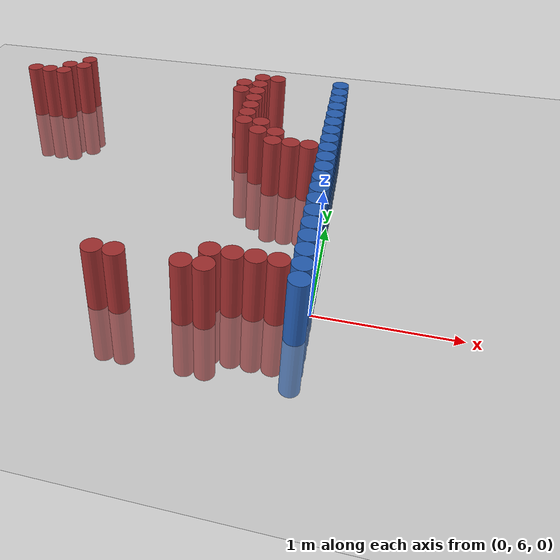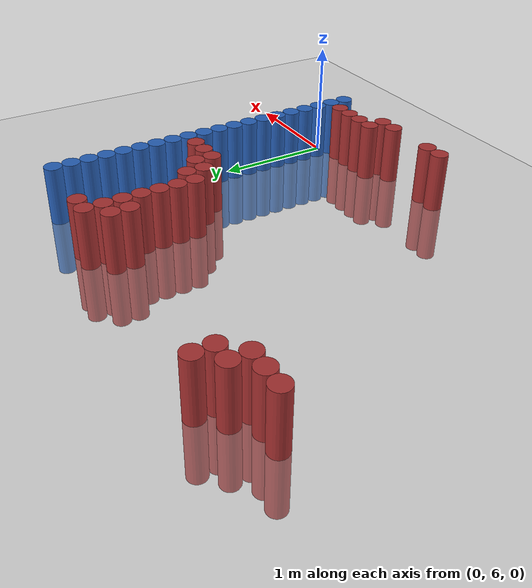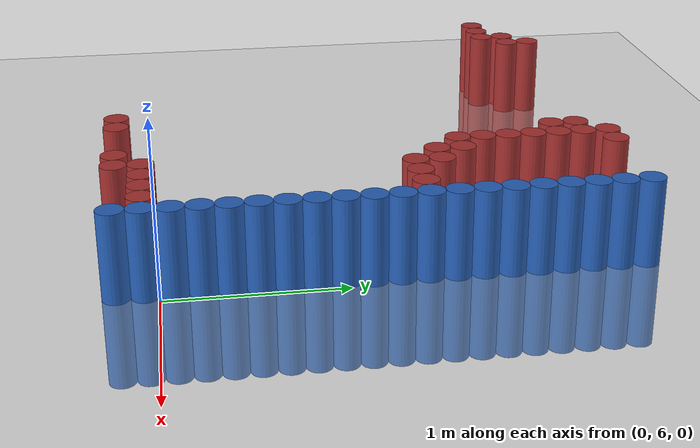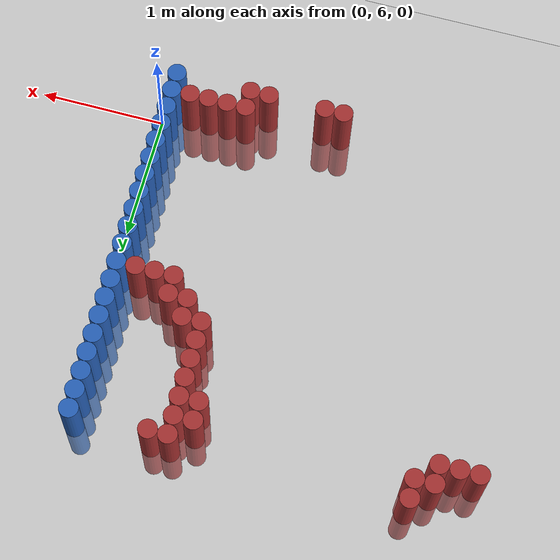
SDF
<sdf version="1.6">
 <world name="default">
  <model name="ground_plane">
   <static>1</static>
   <link name="link">
    <collision name="collision">
     <geometry><plane><normal>0 0 1</normal><size>100 100</size></plane></geometry>
     <surface><friction><ode><mu>100</mu><mu2>50</mu2></ode></friction></surface>
    </collision>
    <visual name="visual">
     <cast_shadows>0</cast_shadows>
     <geometry><plane><normal>0 0 1</normal><size>100 100</size></plane></geometry>
     <material>
      <script><uri>file://media/materials/scripts/gazebo.material</uri><name>Gazebo/Grey</name></script>
     </material>
    </visual>
   </link>
  </model>
  <model name="unit_cylinder_180">
   <static>1</static>
   <pose>-3.075000 8.325000 0.000000 0.000000 0.000000 0.000000</pose>
   <link name="link">
    <inertial>
     <mass>1</mass>
     <inertia><ixx>0.145833</ixx><ixy>0</ixy><ixz>0</ixz><iyy>0.145833</iyy><iyz>0</iyz><izz>0.125</izz></inertia>
    </inertial>
    <collision name="collision">
     <geometry><cylinder><radius>0.075000</radius><length>1</length></cylinder></geometry>
    </collision>
    <visual name="visual">
     <geometry><cylinder><radius>0.075000</radius><length>1</length></cylinder></geometry>
     <material>
      <ambient>0.648000 0.192000 0.192000 1</ambient>
      <diffuse>0.648000 0.192000 0.192000 1</diffuse>
     </material>
     <material>
      <script><name>Gazebo/Grey</name><uri>file://media/materials/scripts/gazebo.material</uri></script>
     </material>
    </visual>
   </link>
  </model>
  <model name="unit_cylinder_184">
   <static>1</static>
   <pose>-2.925000 8.325000 0.000000 0.000000 0.000000 0.000000</pose>
   <link name="link">
    <inertial>
     <mass>1</mass>
     <inertia><ixx>0.145833</ixx><ixy>0</ixy><ixz>0</ixz><iyy>0.145833</iyy><iyz>0</iyz><izz>0.125</izz></inertia>
    </inertial>
    <collision name="collision">
     <geometry><cylinder><radius>0.075000</radius><length>1</length></cylinder></geometry>
    </collision>
    <visual name="visual">
     <geometry><cylinder><radius>0.075000</radius><length>1</length></cylinder></geometry>
     <material>
      <ambient>0.648000 0.192000 0.192000 1</ambient>
      <diffuse>0.648000 0.192000 0.192000 1</diffuse>
     </material>
     <material>
      <script><name>Gazebo/Grey</name><uri>file://media/materials/scripts/gazebo.material</uri></script>
     </material>
    </visual>
   </link>
  </model>
  <model name="unit_cylinder_189">
   <static>1</static>
   <pose>-2.775000 8.325000 0.000000 0.000000 0.000000 0.000000</pose>
   <link name="link">
    <inertial>
     <mass>1</mass>
     <inertia><ixx>0.145833</ixx><ixy>0</ixy><ixz>0</ixz><iyy>0.145833</iyy><iyz>0</iyz><izz>0.125</izz></inertia>
    </inertial>
    <collision name="collision">
     <geometry><cylinder><radius>0.075000</radius><length>1</length></cylinder></geometry>
    </collision>
    <visual name="visual">
     <geometry><cylinder><radius>0.075000</radius><length>1</length></cylinder></geometry>
     <material>
      <ambient>0.648000 0.192000 0.192000 1</ambient>
      <diffuse>0.648000 0.192000 0.192000 1</diffuse>
     </material>
     <material>
      <script><name>Gazebo/Grey</name><uri>file://media/materials/scripts/gazebo.material</uri></script>
     </material>
    </visual>
   </link>
  </model>
  <model name="unit_cylinder_190">
   <static>1</static>
   <pose>-2.775000 8.475000 0.000000 0.000000 0.000000 0.000000</pose>
   <link name="link">
    <inertial>
     <mass>1</mass>
     <inertia><ixx>0.145833</ixx><ixy>0</ixy><ixz>0</ixz><iyy>0.145833</iyy><iyz>0</iyz><izz>0.125</izz></inertia>
    </inertial>
    <collision name="collision">
     <geometry><cylinder><radius>0.075000</radius><length>1</length></cylinder></geometry>
    </collision>
    <visual name="visual">
     <geometry><cylinder><radius>0.075000</radius><length>1</length></cylinder></geometry>
     <material>
      <ambient>0.648000 0.192000 0.192000 1</ambient>
      <diffuse>0.648000 0.192000 0.192000 1</diffuse>
     </material>
     <material>
      <script><name>Gazebo/Grey</name><uri>file://media/materials/scripts/gazebo.material</uri></script>
     </material>
    </visual>
   </link>
  </model>
  <model name="unit_cylinder_194">
   <static>1</static>
   <pose>-2.625000 8.475000 0.000000 0.000000 0.000000 0.000000</pose>
   <link name="link">
    <inertial>
     <mass>1</mass>
     <inertia><ixx>0.145833</ixx><ixy>0</ixy><ixz>0</ixz><iyy>0.145833</iyy><iyz>0</iyz><izz>0.125</izz></inertia>
    </inertial>
    <collision name="collision">
     <geometry><cylinder><radius>0.075000</radius><length>1</length></cylinder></geometry>
    </collision>
    <visual name="visual">
     <geometry><cylinder><radius>0.075000</radius><length>1</length></cylinder></geometry>
     <material>
      <ambient>0.648000 0.192000 0.192000 1</ambient>
      <diffuse>0.648000 0.192000 0.192000 1</diffuse>
     </material>
     <material>
      <script><name>Gazebo/Grey</name><uri>file://media/materials/scripts/gazebo.material</uri></script>
     </material>
    </visual>
   </link>
  </model>
  <model name="unit_cylinder_195">
   <static>1</static>
   <pose>-2.625000 8.625000 0.000000 0.000000 0.000000 0.000000</pose>
   <link name="link">
    <inertial>
     <mass>1</mass>
     <inertia><ixx>0.145833</ixx><ixy>0</ixy><ixz>0</ixz><iyy>0.145833</iyy><iyz>0</iyz><izz>0.125</izz></inertia>
    </inertial>
    <collision name="collision">
     <geometry><cylinder><radius>0.075000</radius><length>1</length></cylinder></geometry>
    </collision>
    <visual name="visual">
     <geometry><cylinder><radius>0.075000</radius><length>1</length></cylinder></geometry>
     <material>
      <ambient>0.648000 0.192000 0.192000 1</ambient>
      <diffuse>0.648000 0.192000 0.192000 1</diffuse>
     </material>
     <material>
      <script><name>Gazebo/Grey</name><uri>file://media/materials/scripts/gazebo.material</uri></script>
     </material>
    </visual>
   </link>
  </model>
  <model name="unit_cylinder_206">
   <static>1</static>
   <pose>-1.425000 5.775000 0.000000 0.000000 0.000000 0.000000</pose>
   <link name="link">
    <inertial>
     <mass>1</mass>
     <inertia><ixx>0.145833</ixx><ixy>0</ixy><ixz>0</ixz><iyy>0.145833</iyy><iyz>0</iyz><izz>0.125</izz></inertia>
    </inertial>
    <collision name="collision">
     <geometry><cylinder><radius>0.075000</radius><length>1</length></cylinder></geometry>
    </collision>
    <visual name="visual">
     <geometry><cylinder><radius>0.075000</radius><length>1</length></cylinder></geometry>
     <material>
      <ambient>0.648000 0.192000 0.192000 1</ambient>
      <diffuse>0.648000 0.192000 0.192000 1</diffuse>
     </material>
     <material>
      <script><name>Gazebo/Grey</name><uri>file://media/materials/scripts/gazebo.material</uri></script>
     </material>
    </visual>
   </link>
  </model>
  <model name="unit_cylinder_213">
   <static>1</static>
   <pose>-1.275000 5.775000 0.000000 0.000000 0.000000 0.000000</pose>
   <link name="link">
    <inertial>
     <mass>1</mass>
     <inertia><ixx>0.145833</ixx><ixy>0</ixy><ixz>0</ixz><iyy>0.145833</iyy><iyz>0</iyz><izz>0.125</izz></inertia>
    </inertial>
    <collision name="collision">
     <geometry><cylinder><radius>0.075000</radius><length>1</length></cylinder></geometry>
    </collision>
    <visual name="visual">
     <geometry><cylinder><radius>0.075000</radius><length>1</length></cylinder></geometry>
     <material>
      <ambient>0.648000 0.192000 0.192000 1</ambient>
      <diffuse>0.648000 0.192000 0.192000 1</diffuse>
     </material>
     <material>
      <script><name>Gazebo/Grey</name><uri>file://media/materials/scripts/gazebo.material</uri></script>
     </material>
    </visual>
   </link>
  </model>
  <model name="unit_cylinder_223">
   <static>1</static>
   <pose>-0.975000 8.325000 0.000000 0.000000 0.000000 0.000000</pose>
   <link name="link">
    <inertial>
     <mass>1</mass>
     <inertia><ixx>0.145833</ixx><ixy>0</ixy><ixz>0</ixz><iyy>0.145833</iyy><iyz>0</iyz><izz>0.125</izz></inertia>
    </inertial>
    <collision name="collision">
     <geometry><cylinder><radius>0.075000</radius><length>1</length></cylinder></geometry>
    </collision>
    <visual name="visual">
     <geometry><cylinder><radius>0.075000</radius><length>1</length></cylinder></geometry>
     <material>
      <ambient>0.648000 0.192000 0.192000 1</ambient>
      <diffuse>0.648000 0.192000 0.192000 1</diffuse>
     </material>
     <material>
      <script><name>Gazebo/Grey</name><uri>file://media/materials/scripts/gazebo.material</uri></script>
     </material>
    </visual>
   </link>
  </model>
  <model name="unit_cylinder_224">
   <static>1</static>
   <pose>-0.975000 8.475000 0.000000 0.000000 0.000000 0.000000</pose>
   <link name="link">
    <inertial>
     <mass>1</mass>
     <inertia><ixx>0.145833</ixx><ixy>0</ixy><ixz>0</ixz><iyy>0.145833</iyy><iyz>0</iyz><izz>0.125</izz></inertia>
    </inertial>
    <collision name="collision">
     <geometry><cylinder><radius>0.075000</radius><length>1</length></cylinder></geometry>
    </collision>
    <visual name="visual">
     <geometry><cylinder><radius>0.075000</radius><length>1</length></cylinder></geometry>
     <material>
      <ambient>0.648000 0.192000 0.192000 1</ambient>
      <diffuse>0.648000 0.192000 0.192000 1</diffuse>
     </material>
     <material>
      <script><name>Gazebo/Grey</name><uri>file://media/materials/scripts/gazebo.material</uri></script>
     </material>
    </visual>
   </link>
  </model>
  <model name="unit_cylinder_230">
   <static>1</static>
   <pose>-0.825000 5.775000 0.000000 0.000000 0.000000 0.000000</pose>
   <link name="link">
    <inertial>
     <mass>1</mass>
     <inertia><ixx>0.145833</ixx><ixy>0</ixy><ixz>0</ixz><iyy>0.145833</iyy><iyz>0</iyz><izz>0.125</izz></inertia>
    </inertial>
    <collision name="collision">
     <geometry><cylinder><radius>0.075000</radius><length>1</length></cylinder></geometry>
    </collision>
    <visual name="visual">
     <geometry><cylinder><radius>0.075000</radius><length>1</length></cylinder></geometry>
     <material>
      <ambient>0.648000 0.192000 0.192000 1</ambient>
      <diffuse>0.648000 0.192000 0.192000 1</diffuse>
     </material>
     <material>
      <script><name>Gazebo/Grey</name><uri>file://media/materials/scripts/gazebo.material</uri></script>
     </material>
    </visual>
   </link>
  </model>
  <model name="unit_cylinder_231">
   <static>1</static>
   <pose>-0.825000 7.725000 0.000000 0.000000 0.000000 0.000000</pose>
   <link name="link">
    <inertial>
     <mass>1</mass>
     <inertia><ixx>0.145833</ixx><ixy>0</ixy><ixz>0</ixz><iyy>0.145833</iyy><iyz>0</iyz><izz>0.125</izz></inertia>
    </inertial>
    <collision name="collision">
     <geometry><cylinder><radius>0.075000</radius><length>1</length></cylinder></geometry>
    </collision>
    <visual name="visual">
     <geometry><cylinder><radius>0.075000</radius><length>1</length></cylinder></geometry>
     <material>
      <ambient>0.648000 0.192000 0.192000 1</ambient>
      <diffuse>0.648000 0.192000 0.192000 1</diffuse>
     </material>
     <material>
      <script><name>Gazebo/Grey</name><uri>file://media/materials/scripts/gazebo.material</uri></script>
     </material>
    </visual>
   </link>
  </model>
  <model name="unit_cylinder_232">
   <static>1</static>
   <pose>-0.825000 7.875000 0.000000 0.000000 0.000000 0.000000</pose>
   <link name="link">
    <inertial>
     <mass>1</mass>
     <inertia><ixx>0.145833</ixx><ixy>0</ixy><ixz>0</ixz><iyy>0.145833</iyy><iyz>0</iyz><izz>0.125</izz></inertia>
    </inertial>
    <collision name="collision">
     <geometry><cylinder><radius>0.075000</radius><length>1</length></cylinder></geometry>
    </collision>
    <visual name="visual">
     <geometry><cylinder><radius>0.075000</radius><length>1</length></cylinder></geometry>
     <material>
      <ambient>0.648000 0.192000 0.192000 1</ambient>
      <diffuse>0.648000 0.192000 0.192000 1</diffuse>
     </material>
     <material>
      <script><name>Gazebo/Grey</name><uri>file://media/materials/scripts/gazebo.material</uri></script>
     </material>
    </visual>
   </link>
  </model>
  <model name="unit_cylinder_233">
   <static>1</static>
   <pose>-0.825000 8.025000 0.000000 0.000000 0.000000 0.000000</pose>
   <link name="link">
    <inertial>
     <mass>1</mass>
     <inertia><ixx>0.145833</ixx><ixy>0</ixy><ixz>0</ixz><iyy>0.145833</iyy><iyz>0</iyz><izz>0.125</izz></inertia>
    </inertial>
    <collision name="collision">
     <geometry><cylinder><radius>0.075000</radius><length>1</length></cylinder></geometry>
    </collision>
    <visual name="visual">
     <geometry><cylinder><radius>0.075000</radius><length>1</length></cylinder></geometry>
     <material>
      <ambient>0.648000 0.192000 0.192000 1</ambient>
      <diffuse>0.648000 0.192000 0.192000 1</diffuse>
     </material>
     <material>
      <script><name>Gazebo/Grey</name><uri>file://media/materials/scripts/gazebo.material</uri></script>
     </material>
    </visual>
   </link>
  </model>
  <model name="unit_cylinder_234">
   <static>1</static>
   <pose>-0.825000 8.175000 0.000000 0.000000 0.000000 0.000000</pose>
   <link name="link">
    <inertial>
     <mass>1</mass>
     <inertia><ixx>0.145833</ixx><ixy>0</ixy><ixz>0</ixz><iyy>0.145833</iyy><iyz>0</iyz><izz>0.125</izz></inertia>
    </inertial>
    <collision name="collision">
     <geometry><cylinder><radius>0.075000</radius><length>1</length></cylinder></geometry>
    </collision>
    <visual name="visual">
     <geometry><cylinder><radius>0.075000</radius><length>1</length></cylinder></geometry>
     <material>
      <ambient>0.648000 0.192000 0.192000 1</ambient>
      <diffuse>0.648000 0.192000 0.192000 1</diffuse>
     </material>
     <material>
      <script><name>Gazebo/Grey</name><uri>file://media/materials/scripts/gazebo.material</uri></script>
     </material>
    </visual>
   </link>
  </model>
  <model name="unit_cylinder_235">
   <static>1</static>
   <pose>-0.825000 8.325000 0.000000 0.000000 0.000000 0.000000</pose>
   <link name="link">
    <inertial>
     <mass>1</mass>
     <inertia><ixx>0.145833</ixx><ixy>0</ixy><ixz>0</ixz><iyy>0.145833</iyy><iyz>0</iyz><izz>0.125</izz></inertia>
    </inertial>
    <collision name="collision">
     <geometry><cylinder><radius>0.075000</radius><length>1</length></cylinder></geometry>
    </collision>
    <visual name="visual">
     <geometry><cylinder><radius>0.075000</radius><length>1</length></cylinder></geometry>
     <material>
      <ambient>0.648000 0.192000 0.192000 1</ambient>
      <diffuse>0.648000 0.192000 0.192000 1</diffuse>
     </material>
     <material>
      <script><name>Gazebo/Grey</name><uri>file://media/materials/scripts/gazebo.material</uri></script>
     </material>
    </visual>
   </link>
  </model>
  <model name="unit_cylinder_236">
   <static>1</static>
   <pose>-0.825000 8.475000 0.000000 0.000000 0.000000 0.000000</pose>
   <link name="link">
    <inertial>
     <mass>1</mass>
     <inertia><ixx>0.145833</ixx><ixy>0</ixy><ixz>0</ixz><iyy>0.145833</iyy><iyz>0</iyz><izz>0.125</izz></inertia>
    </inertial>
    <collision name="collision">
     <geometry><cylinder><radius>0.075000</radius><length>1</length></cylinder></geometry>
    </collision>
    <visual name="visual">
     <geometry><cylinder><radius>0.075000</radius><length>1</length></cylinder></geometry>
     <material>
      <ambient>0.648000 0.192000 0.192000 1</ambient>
      <diffuse>0.648000 0.192000 0.192000 1</diffuse>
     </material>
     <material>
      <script><name>Gazebo/Grey</name><uri>file://media/materials/scripts/gazebo.material</uri></script>
     </material>
    </visual>
   </link>
  </model>
  <model name="unit_cylinder_237">
   <static>1</static>
   <pose>-0.825000 8.625000 0.000000 0.000000 0.000000 0.000000</pose>
   <link name="link">
    <inertial>
     <mass>1</mass>
     <inertia><ixx>0.145833</ixx><ixy>0</ixy><ixz>0</ixz><iyy>0.145833</iyy><iyz>0</iyz><izz>0.125</izz></inertia>
    </inertial>
    <collision name="collision">
     <geometry><cylinder><radius>0.075000</radius><length>1</length></cylinder></geometry>
    </collision>
    <visual name="visual">
     <geometry><cylinder><radius>0.075000</radius><length>1</length></cylinder></geometry>
     <material>
      <ambient>0.648000 0.192000 0.192000 1</ambient>
      <diffuse>0.648000 0.192000 0.192000 1</diffuse>
     </material>
     <material>
      <script><name>Gazebo/Grey</name><uri>file://media/materials/scripts/gazebo.material</uri></script>
     </material>
    </visual>
   </link>
  </model>
  <model name="unit_cylinder_241">
   <static>1</static>
   <pose>-0.675000 5.775000 0.000000 0.000000 0.000000 0.000000</pose>
   <link name="link">
    <inertial>
     <mass>1</mass>
     <inertia><ixx>0.145833</ixx><ixy>0</ixy><ixz>0</ixz><iyy>0.145833</iyy><iyz>0</iyz><izz>0.125</izz></inertia>
    </inertial>
    <collision name="collision">
     <geometry><cylinder><radius>0.075000</radius><length>1</length></cylinder></geometry>
    </collision>
    <visual name="visual">
     <geometry><cylinder><radius>0.075000</radius><length>1</length></cylinder></geometry>
     <material>
      <ambient>0.648000 0.192000 0.192000 1</ambient>
      <diffuse>0.648000 0.192000 0.192000 1</diffuse>
     </material>
     <material>
      <script><name>Gazebo/Grey</name><uri>file://media/materials/scripts/gazebo.material</uri></script>
     </material>
    </visual>
   </link>
  </model>
  <model name="unit_cylinder_242">
   <static>1</static>
   <pose>-0.675000 5.925000 0.000000 0.000000 0.000000 0.000000</pose>
   <link name="link">
    <inertial>
     <mass>1</mass>
     <inertia><ixx>0.145833</ixx><ixy>0</ixy><ixz>0</ixz><iyy>0.145833</iyy><iyz>0</iyz><izz>0.125</izz></inertia>
    </inertial>
    <collision name="collision">
     <geometry><cylinder><radius>0.075000</radius><length>1</length></cylinder></geometry>
    </collision>
    <visual name="visual">
     <geometry><cylinder><radius>0.075000</radius><length>1</length></cylinder></geometry>
     <material>
      <ambient>0.648000 0.192000 0.192000 1</ambient>
      <diffuse>0.648000 0.192000 0.192000 1</diffuse>
     </material>
     <material>
      <script><name>Gazebo/Grey</name><uri>file://media/materials/scripts/gazebo.material</uri></script>
     </material>
    </visual>
   </link>
  </model>
  <model name="unit_cylinder_243">
   <static>1</static>
   <pose>-0.675000 7.575000 0.000000 0.000000 0.000000 0.000000</pose>
   <link name="link">
    <inertial>
     <mass>1</mass>
     <inertia><ixx>0.145833</ixx><ixy>0</ixy><ixz>0</ixz><iyy>0.145833</iyy><iyz>0</iyz><izz>0.125</izz></inertia>
    </inertial>
    <collision name="collision">
     <geometry><cylinder><radius>0.075000</radius><length>1</length></cylinder></geometry>
    </collision>
    <visual name="visual">
     <geometry><cylinder><radius>0.075000</radius><length>1</length></cylinder></geometry>
     <material>
      <ambient>0.648000 0.192000 0.192000 1</ambient>
      <diffuse>0.648000 0.192000 0.192000 1</diffuse>
     </material>
     <material>
      <script><name>Gazebo/Grey</name><uri>file://media/materials/scripts/gazebo.material</uri></script>
     </material>
    </visual>
   </link>
  </model>
  <model name="unit_cylinder_244">
   <static>1</static>
   <pose>-0.675000 7.725000 0.000000 0.000000 0.000000 0.000000</pose>
   <link name="link">
    <inertial>
     <mass>1</mass>
     <inertia><ixx>0.145833</ixx><ixy>0</ixy><ixz>0</ixz><iyy>0.145833</iyy><iyz>0</iyz><izz>0.125</izz></inertia>
    </inertial>
    <collision name="collision">
     <geometry><cylinder><radius>0.075000</radius><length>1</length></cylinder></geometry>
    </collision>
    <visual name="visual">
     <geometry><cylinder><radius>0.075000</radius><length>1</length></cylinder></geometry>
     <material>
      <ambient>0.648000 0.192000 0.192000 1</ambient>
      <diffuse>0.648000 0.192000 0.192000 1</diffuse>
     </material>
     <material>
      <script><name>Gazebo/Grey</name><uri>file://media/materials/scripts/gazebo.material</uri></script>
     </material>
    </visual>
   </link>
  </model>
  <model name="unit_cylinder_245">
   <static>1</static>
   <pose>-0.675000 8.625000 0.000000 0.000000 0.000000 0.000000</pose>
   <link name="link">
    <inertial>
     <mass>1</mass>
     <inertia><ixx>0.145833</ixx><ixy>0</ixy><ixz>0</ixz><iyy>0.145833</iyy><iyz>0</iyz><izz>0.125</izz></inertia>
    </inertial>
    <collision name="collision">
     <geometry><cylinder><radius>0.075000</radius><length>1</length></cylinder></geometry>
    </collision>
    <visual name="visual">
     <geometry><cylinder><radius>0.075000</radius><length>1</length></cylinder></geometry>
     <material>
      <ambient>0.648000 0.192000 0.192000 1</ambient>
      <diffuse>0.648000 0.192000 0.192000 1</diffuse>
     </material>
     <material>
      <script><name>Gazebo/Grey</name><uri>file://media/materials/scripts/gazebo.material</uri></script>
     </material>
    </visual>
   </link>
  </model>
  <model name="unit_cylinder_252">
   <static>1</static>
   <pose>-0.525000 5.925000 0.000000 0.000000 0.000000 0.000000</pose>
   <link name="link">
    <inertial>
     <mass>1</mass>
     <inertia><ixx>0.145833</ixx><ixy>0</ixy><ixz>0</ixz><iyy>0.145833</iyy><iyz>0</iyz><izz>0.125</izz></inertia>
    </inertial>
    <collision name="collision">
     <geometry><cylinder><radius>0.075000</radius><length>1</length></cylinder></geometry>
    </collision>
    <visual name="visual">
     <geometry><cylinder><radius>0.075000</radius><length>1</length></cylinder></geometry>
     <material>
      <ambient>0.648000 0.192000 0.192000 1</ambient>
      <diffuse>0.648000 0.192000 0.192000 1</diffuse>
     </material>
     <material>
      <script><name>Gazebo/Grey</name><uri>file://media/materials/scripts/gazebo.material</uri></script>
     </material>
    </visual>
   </link>
  </model>
  <model name="unit_cylinder_253">
   <static>1</static>
   <pose>-0.525000 7.425000 0.000000 0.000000 0.000000 0.000000</pose>
   <link name="link">
    <inertial>
     <mass>1</mass>
     <inertia><ixx>0.145833</ixx><ixy>0</ixy><ixz>0</ixz><iyy>0.145833</iyy><iyz>0</iyz><izz>0.125</izz></inertia>
    </inertial>
    <collision name="collision">
     <geometry><cylinder><radius>0.075000</radius><length>1</length></cylinder></geometry>
    </collision>
    <visual name="visual">
     <geometry><cylinder><radius>0.075000</radius><length>1</length></cylinder></geometry>
     <material>
      <ambient>0.648000 0.192000 0.192000 1</ambient>
      <diffuse>0.648000 0.192000 0.192000 1</diffuse>
     </material>
     <material>
      <script><name>Gazebo/Grey</name><uri>file://media/materials/scripts/gazebo.material</uri></script>
     </material>
    </visual>
   </link>
  </model>
  <model name="unit_cylinder_254">
   <static>1</static>
   <pose>-0.525000 7.575000 0.000000 0.000000 0.000000 0.000000</pose>
   <link name="link">
    <inertial>
     <mass>1</mass>
     <inertia><ixx>0.145833</ixx><ixy>0</ixy><ixz>0</ixz><iyy>0.145833</iyy><iyz>0</iyz><izz>0.125</izz></inertia>
    </inertial>
    <collision name="collision">
     <geometry><cylinder><radius>0.075000</radius><length>1</length></cylinder></geometry>
    </collision>
    <visual name="visual">
     <geometry><cylinder><radius>0.075000</radius><length>1</length></cylinder></geometry>
     <material>
      <ambient>0.648000 0.192000 0.192000 1</ambient>
      <diffuse>0.648000 0.192000 0.192000 1</diffuse>
     </material>
     <material>
      <script><name>Gazebo/Grey</name><uri>file://media/materials/scripts/gazebo.material</uri></script>
     </material>
    </visual>
   </link>
  </model>
  <model name="unit_cylinder_261">
   <static>1</static>
   <pose>-0.375000 5.925000 0.000000 0.000000 0.000000 0.000000</pose>
   <link name="link">
    <inertial>
     <mass>1</mass>
     <inertia><ixx>0.145833</ixx><ixy>0</ixy><ixz>0</ixz><iyy>0.145833</iyy><iyz>0</iyz><izz>0.125</izz></inertia>
    </inertial>
    <collision name="collision">
     <geometry><cylinder><radius>0.075000</radius><length>1</length></cylinder></geometry>
    </collision>
    <visual name="visual">
     <geometry><cylinder><radius>0.075000</radius><length>1</length></cylinder></geometry>
     <material>
      <ambient>0.648000 0.192000 0.192000 1</ambient>
      <diffuse>0.648000 0.192000 0.192000 1</diffuse>
     </material>
     <material>
      <script><name>Gazebo/Grey</name><uri>file://media/materials/scripts/gazebo.material</uri></script>
     </material>
    </visual>
   </link>
  </model>
  <model name="unit_cylinder_262">
   <static>1</static>
   <pose>-0.375000 7.425000 0.000000 0.000000 0.000000 0.000000</pose>
   <link name="link">
    <inertial>
     <mass>1</mass>
     <inertia><ixx>0.145833</ixx><ixy>0</ixy><ixz>0</ixz><iyy>0.145833</iyy><iyz>0</iyz><izz>0.125</izz></inertia>
    </inertial>
    <collision name="collision">
     <geometry><cylinder><radius>0.075000</radius><length>1</length></cylinder></geometry>
    </collision>
    <visual name="visual">
     <geometry><cylinder><radius>0.075000</radius><length>1</length></cylinder></geometry>
     <material>
      <ambient>0.648000 0.192000 0.192000 1</ambient>
      <diffuse>0.648000 0.192000 0.192000 1</diffuse>
     </material>
     <material>
      <script><name>Gazebo/Grey</name><uri>file://media/materials/scripts/gazebo.material</uri></script>
     </material>
    </visual>
   </link>
  </model>
  <model name="unit_cylinder_266">
   <static>1</static>
   <pose>-0.225000 5.925000 0.000000 0.000000 0.000000 0.000000</pose>
   <link name="link">
    <inertial>
     <mass>1</mass>
     <inertia><ixx>0.145833</ixx><ixy>0</ixy><ixz>0</ixz><iyy>0.145833</iyy><iyz>0</iyz><izz>0.125</izz></inertia>
    </inertial>
    <collision name="collision">
     <geometry><cylinder><radius>0.075000</radius><length>1</length></cylinder></geometry>
    </collision>
    <visual name="visual">
     <geometry><cylinder><radius>0.075000</radius><length>1</length></cylinder></geometry>
     <material>
      <ambient>0.648000 0.192000 0.192000 1</ambient>
      <diffuse>0.648000 0.192000 0.192000 1</diffuse>
     </material>
     <material>
      <script><name>Gazebo/Grey</name><uri>file://media/materials/scripts/gazebo.material</uri></script>
     </material>
    </visual>
   </link>
  </model>
  <model name="unit_cylinder_267">
   <static>1</static>
   <pose>-0.225000 7.425000 0.000000 0.000000 0.000000 0.000000</pose>
   <link name="link">
    <inertial>
     <mass>1</mass>
     <inertia><ixx>0.145833</ixx><ixy>0</ixy><ixz>0</ixz><iyy>0.145833</iyy><iyz>0</iyz><izz>0.125</izz></inertia>
    </inertial>
    <collision name="collision">
     <geometry><cylinder><radius>0.075000</radius><length>1</length></cylinder></geometry>
    </collision>
    <visual name="visual">
     <geometry><cylinder><radius>0.075000</radius><length>1</length></cylinder></geometry>
     <material>
      <ambient>0.648000 0.192000 0.192000 1</ambient>
      <diffuse>0.648000 0.192000 0.192000 1</diffuse>
     </material>
     <material>
      <script><name>Gazebo/Grey</name><uri>file://media/materials/scripts/gazebo.material</uri></script>
     </material>
    </visual>
   </link>
  </model>
  <model name="unit_cylinder_274">
   <static>1</static>
   <pose>-0.075000 5.775000 0.000000 0.000000 0.000000 0.000000</pose>
   <link name="link">
    <inertial>
     <mass>1</mass>
     <inertia><ixx>0.145833</ixx><ixy>0</ixy><ixz>0</ixz><iyy>0.145833</iyy><iyz>0</iyz><izz>0.125</izz></inertia>
    </inertial>
    <collision name="collision">
     <geometry><cylinder><radius>0.075000</radius><length>1</length></cylinder></geometry>
    </collision>
    <visual name="visual">
     <geometry><cylinder><radius>0.075000</radius><length>1</length></cylinder></geometry>
     <material>
      <ambient>0.152000 0.379000 0.720000 1</ambient>
      <diffuse>0.152000 0.379000 0.720000 1</diffuse>
     </material>
     <material>
      <script><name>Gazebo/Grey</name><uri>file://media/materials/scripts/gazebo.material</uri></script>
     </material>
    </visual>
   </link>
  </model>
  <model name="unit_cylinder_275">
   <static>1</static>
   <pose>-0.075000 5.925000 0.000000 0.000000 0.000000 0.000000</pose>
   <link name="link">
    <inertial>
     <mass>1</mass>
     <inertia><ixx>0.145833</ixx><ixy>0</ixy><ixz>0</ixz><iyy>0.145833</iyy><iyz>0</iyz><izz>0.125</izz></inertia>
    </inertial>
    <collision name="collision">
     <geometry><cylinder><radius>0.075000</radius><length>1</length></cylinder></geometry>
    </collision>
    <visual name="visual">
     <geometry><cylinder><radius>0.075000</radius><length>1</length></cylinder></geometry>
     <material>
      <ambient>0.152000 0.379000 0.720000 1</ambient>
      <diffuse>0.152000 0.379000 0.720000 1</diffuse>
     </material>
     <material>
      <script><name>Gazebo/Grey</name><uri>file://media/materials/scripts/gazebo.material</uri></script>
     </material>
    </visual>
   </link>
  </model>
  <model name="unit_cylinder_276">
   <static>1</static>
   <pose>-0.075000 6.075000 0.000000 0.000000 0.000000 0.000000</pose>
   <link name="link">
    <inertial>
     <mass>1</mass>
     <inertia><ixx>0.145833</ixx><ixy>0</ixy><ixz>0</ixz><iyy>0.145833</iyy><iyz>0</iyz><izz>0.125</izz></inertia>
    </inertial>
    <collision name="collision">
     <geometry><cylinder><radius>0.075000</radius><length>1</length></cylinder></geometry>
    </collision>
    <visual name="visual">
     <geometry><cylinder><radius>0.075000</radius><length>1</length></cylinder></geometry>
     <material>
      <ambient>0.152000 0.379000 0.720000 1</ambient>
      <diffuse>0.152000 0.379000 0.720000 1</diffuse>
     </material>
     <material>
      <script><name>Gazebo/Grey</name><uri>file://media/materials/scripts/gazebo.material</uri></script>
     </material>
    </visual>
   </link>
  </model>
  <model name="unit_cylinder_277">
   <static>1</static>
   <pose>-0.075000 6.225000 0.000000 0.000000 0.000000 0.000000</pose>
   <link name="link">
    <inertial>
     <mass>1</mass>
     <inertia><ixx>0.145833</ixx><ixy>0</ixy><ixz>0</ixz><iyy>0.145833</iyy><iyz>0</iyz><izz>0.125</izz></inertia>
    </inertial>
    <collision name="collision">
     <geometry><cylinder><radius>0.075000</radius><length>1</length></cylinder></geometry>
    </collision>
    <visual name="visual">
     <geometry><cylinder><radius>0.075000</radius><length>1</length></cylinder></geometry>
     <material>
      <ambient>0.152000 0.379000 0.720000 1</ambient>
      <diffuse>0.152000 0.379000 0.720000 1</diffuse>
     </material>
     <material>
      <script><name>Gazebo/Grey</name><uri>file://media/materials/scripts/gazebo.material</uri></script>
     </material>
    </visual>
   </link>
  </model>
  <model name="unit_cylinder_278">
   <static>1</static>
   <pose>-0.075000 6.375000 0.000000 0.000000 0.000000 0.000000</pose>
   <link name="link">
    <inertial>
     <mass>1</mass>
     <inertia><ixx>0.145833</ixx><ixy>0</ixy><ixz>0</ixz><iyy>0.145833</iyy><iyz>0</iyz><izz>0.125</izz></inertia>
    </inertial>
    <collision name="collision">
     <geometry><cylinder><radius>0.075000</radius><length>1</length></cylinder></geometry>
    </collision>
    <visual name="visual">
     <geometry><cylinder><radius>0.075000</radius><length>1</length></cylinder></geometry>
     <material>
      <ambient>0.152000 0.379000 0.720000 1</ambient>
      <diffuse>0.152000 0.379000 0.720000 1</diffuse>
     </material>
     <material>
      <script><name>Gazebo/Grey</name><uri>file://media/materials/scripts/gazebo.material</uri></script>
     </material>
    </visual>
   </link>
  </model>
  <model name="unit_cylinder_279">
   <static>1</static>
   <pose>-0.075000 6.525000 0.000000 0.000000 0.000000 0.000000</pose>
   <link name="link">
    <inertial>
     <mass>1</mass>
     <inertia><ixx>0.145833</ixx><ixy>0</ixy><ixz>0</ixz><iyy>0.145833</iyy><iyz>0</iyz><izz>0.125</izz></inertia>
    </inertial>
    <collision name="collision">
     <geometry><cylinder><radius>0.075000</radius><length>1</length></cylinder></geometry>
    </collision>
    <visual name="visual">
     <geometry><cylinder><radius>0.075000</radius><length>1</length></cylinder></geometry>
     <material>
      <ambient>0.152000 0.379000 0.720000 1</ambient>
      <diffuse>0.152000 0.379000 0.720000 1</diffuse>
     </material>
     <material>
      <script><name>Gazebo/Grey</name><uri>file://media/materials/scripts/gazebo.material</uri></script>
     </material>
    </visual>
   </link>
  </model>
  <model name="unit_cylinder_280">
   <static>1</static>
   <pose>-0.075000 6.675000 0.000000 0.000000 0.000000 0.000000</pose>
   <link name="link">
    <inertial>
     <mass>1</mass>
     <inertia><ixx>0.145833</ixx><ixy>0</ixy><ixz>0</ixz><iyy>0.145833</iyy><iyz>0</iyz><izz>0.125</izz></inertia>
    </inertial>
    <collision name="collision">
     <geometry><cylinder><radius>0.075000</radius><length>1</length></cylinder></geometry>
    </collision>
    <visual name="visual">
     <geometry><cylinder><radius>0.075000</radius><length>1</length></cylinder></geometry>
     <material>
      <ambient>0.152000 0.379000 0.720000 1</ambient>
      <diffuse>0.152000 0.379000 0.720000 1</diffuse>
     </material>
     <material>
      <script><name>Gazebo/Grey</name><uri>file://media/materials/scripts/gazebo.material</uri></script>
     </material>
    </visual>
   </link>
  </model>
  <model name="unit_cylinder_281">
   <static>1</static>
   <pose>-0.075000 6.825000 0.000000 0.000000 0.000000 0.000000</pose>
   <link name="link">
    <inertial>
     <mass>1</mass>
     <inertia><ixx>0.145833</ixx><ixy>0</ixy><ixz>0</ixz><iyy>0.145833</iyy><iyz>0</iyz><izz>0.125</izz></inertia>
    </inertial>
    <collision name="collision">
     <geometry><cylinder><radius>0.075000</radius><length>1</length></cylinder></geometry>
    </collision>
    <visual name="visual">
     <geometry><cylinder><radius>0.075000</radius><length>1</length></cylinder></geometry>
     <material>
      <ambient>0.152000 0.379000 0.720000 1</ambient>
      <diffuse>0.152000 0.379000 0.720000 1</diffuse>
     </material>
     <material>
      <script><name>Gazebo/Grey</name><uri>file://media/materials/scripts/gazebo.material</uri></script>
     </material>
    </visual>
   </link>
  </model>
  <model name="unit_cylinder_282">
   <static>1</static>
   <pose>-0.075000 6.975000 0.000000 0.000000 0.000000 0.000000</pose>
   <link name="link">
    <inertial>
     <mass>1</mass>
     <inertia><ixx>0.145833</ixx><ixy>0</ixy><ixz>0</ixz><iyy>0.145833</iyy><iyz>0</iyz><izz>0.125</izz></inertia>
    </inertial>
    <collision name="collision">
     <geometry><cylinder><radius>0.075000</radius><length>1</length></cylinder></geometry>
    </collision>
    <visual name="visual">
     <geometry><cylinder><radius>0.075000</radius><length>1</length></cylinder></geometry>
     <material>
      <ambient>0.152000 0.379000 0.720000 1</ambient>
      <diffuse>0.152000 0.379000 0.720000 1</diffuse>
     </material>
     <material>
      <script><name>Gazebo/Grey</name><uri>file://media/materials/scripts/gazebo.material</uri></script>
     </material>
    </visual>
   </link>
  </model>
  <model name="unit_cylinder_283">
   <static>1</static>
   <pose>-0.075000 7.125000 0.000000 0.000000 0.000000 0.000000</pose>
   <link name="link">
    <inertial>
     <mass>1</mass>
     <inertia><ixx>0.145833</ixx><ixy>0</ixy><ixz>0</ixz><iyy>0.145833</iyy><iyz>0</iyz><izz>0.125</izz></inertia>
    </inertial>
    <collision name="collision">
     <geometry><cylinder><radius>0.075000</radius><length>1</length></cylinder></geometry>
    </collision>
    <visual name="visual">
     <geometry><cylinder><radius>0.075000</radius><length>1</length></cylinder></geometry>
     <material>
      <ambient>0.152000 0.379000 0.720000 1</ambient>
      <diffuse>0.152000 0.379000 0.720000 1</diffuse>
     </material>
     <material>
      <script><name>Gazebo/Grey</name><uri>file://media/materials/scripts/gazebo.material</uri></script>
     </material>
    </visual>
   </link>
  </model>
  <model name="unit_cylinder_284">
   <static>1</static>
   <pose>-0.075000 7.275000 0.000000 0.000000 0.000000 0.000000</pose>
   <link name="link">
    <inertial>
     <mass>1</mass>
     <inertia><ixx>0.145833</ixx><ixy>0</ixy><ixz>0</ixz><iyy>0.145833</iyy><iyz>0</iyz><izz>0.125</izz></inertia>
    </inertial>
    <collision name="collision">
     <geometry><cylinder><radius>0.075000</radius><length>1</length></cylinder></geometry>
    </collision>
    <visual name="visual">
     <geometry><cylinder><radius>0.075000</radius><length>1</length></cylinder></geometry>
     <material>
      <ambient>0.152000 0.379000 0.720000 1</ambient>
      <diffuse>0.152000 0.379000 0.720000 1</diffuse>
     </material>
     <material>
      <script><name>Gazebo/Grey</name><uri>file://media/materials/scripts/gazebo.material</uri></script>
     </material>
    </visual>
   </link>
  </model>
  <model name="unit_cylinder_285">
   <static>1</static>
   <pose>-0.075000 7.425000 0.000000 0.000000 0.000000 0.000000</pose>
   <link name="link">
    <inertial>
     <mass>1</mass>
     <inertia><ixx>0.145833</ixx><ixy>0</ixy><ixz>0</ixz><iyy>0.145833</iyy><iyz>0</iyz><izz>0.125</izz></inertia>
    </inertial>
    <collision name="collision">
     <geometry><cylinder><radius>0.075000</radius><length>1</length></cylinder></geometry>
    </collision>
    <visual name="visual">
     <geometry><cylinder><radius>0.075000</radius><length>1</length></cylinder></geometry>
     <material>
      <ambient>0.152000 0.379000 0.720000 1</ambient>
      <diffuse>0.152000 0.379000 0.720000 1</diffuse>
     </material>
     <material>
      <script><name>Gazebo/Grey</name><uri>file://media/materials/scripts/gazebo.material</uri></script>
     </material>
    </visual>
   </link>
  </model>
  <model name="unit_cylinder_286">
   <static>1</static>
   <pose>-0.075000 7.575000 0.000000 0.000000 0.000000 0.000000</pose>
   <link name="link">
    <inertial>
     <mass>1</mass>
     <inertia><ixx>0.145833</ixx><ixy>0</ixy><ixz>0</ixz><iyy>0.145833</iyy><iyz>0</iyz><izz>0.125</izz></inertia>
    </inertial>
    <collision name="collision">
     <geometry><cylinder><radius>0.075000</radius><length>1</length></cylinder></geometry>
    </collision>
    <visual name="visual">
     <geometry><cylinder><radius>0.075000</radius><length>1</length></cylinder></geometry>
     <material>
      <ambient>0.152000 0.379000 0.720000 1</ambient>
      <diffuse>0.152000 0.379000 0.720000 1</diffuse>
     </material>
     <material>
      <script><name>Gazebo/Grey</name><uri>file://media/materials/scripts/gazebo.material</uri></script>
     </material>
    </visual>
   </link>
  </model>
  <model name="unit_cylinder_287">
   <static>1</static>
   <pose>-0.075000 7.725000 0.000000 0.000000 0.000000 0.000000</pose>
   <link name="link">
    <inertial>
     <mass>1</mass>
     <inertia><ixx>0.145833</ixx><ixy>0</ixy><ixz>0</ixz><iyy>0.145833</iyy><iyz>0</iyz><izz>0.125</izz></inertia>
    </inertial>
    <collision name="collision">
     <geometry><cylinder><radius>0.075000</radius><length>1</length></cylinder></geometry>
    </collision>
    <visual name="visual">
     <geometry><cylinder><radius>0.075000</radius><length>1</length></cylinder></geometry>
     <material>
      <ambient>0.152000 0.379000 0.720000 1</ambient>
      <diffuse>0.152000 0.379000 0.720000 1</diffuse>
     </material>
     <material>
      <script><name>Gazebo/Grey</name><uri>file://media/materials/scripts/gazebo.material</uri></script>
     </material>
    </visual>
   </link>
  </model>
  <model name="unit_cylinder_288">
   <static>1</static>
   <pose>-0.075000 7.875000 0.000000 0.000000 0.000000 0.000000</pose>
   <link name="link">
    <inertial>
     <mass>1</mass>
     <inertia><ixx>0.145833</ixx><ixy>0</ixy><ixz>0</ixz><iyy>0.145833</iyy><iyz>0</iyz><izz>0.125</izz></inertia>
    </inertial>
    <collision name="collision">
     <geometry><cylinder><radius>0.075000</radius><length>1</length></cylinder></geometry>
    </collision>
    <visual name="visual">
     <geometry><cylinder><radius>0.075000</radius><length>1</length></cylinder></geometry>
     <material>
      <ambient>0.152000 0.379000 0.720000 1</ambient>
      <diffuse>0.152000 0.379000 0.720000 1</diffuse>
     </material>
     <material>
      <script><name>Gazebo/Grey</name><uri>file://media/materials/scripts/gazebo.material</uri></script>
     </material>
    </visual>
   </link>
  </model>
  <model name="unit_cylinder_289">
   <static>1</static>
   <pose>-0.075000 8.025000 0.000000 0.000000 0.000000 0.000000</pose>
   <link name="link">
    <inertial>
     <mass>1</mass>
     <inertia><ixx>0.145833</ixx><ixy>0</ixy><ixz>0</ixz><iyy>0.145833</iyy><iyz>0</iyz><izz>0.125</izz></inertia>
    </inertial>
    <collision name="collision">
     <geometry><cylinder><radius>0.075000</radius><length>1</length></cylinder></geometry>
    </collision>
    <visual name="visual">
     <geometry><cylinder><radius>0.075000</radius><length>1</length></cylinder></geometry>
     <material>
      <ambient>0.152000 0.379000 0.720000 1</ambient>
      <diffuse>0.152000 0.379000 0.720000 1</diffuse>
     </material>
     <material>
      <script><name>Gazebo/Grey</name><uri>file://media/materials/scripts/gazebo.material</uri></script>
     </material>
    </visual>
   </link>
  </model>
  <model name="unit_cylinder_290">
   <static>1</static>
   <pose>-0.075000 8.175000 0.000000 0.000000 0.000000 0.000000</pose>
   <link name="link">
    <inertial>
     <mass>1</mass>
     <inertia><ixx>0.145833</ixx><ixy>0</ixy><ixz>0</ixz><iyy>0.145833</iyy><iyz>0</iyz><izz>0.125</izz></inertia>
    </inertial>
    <collision name="collision">
     <geometry><cylinder><radius>0.075000</radius><length>1</length></cylinder></geometry>
    </collision>
    <visual name="visual">
     <geometry><cylinder><radius>0.075000</radius><length>1</length></cylinder></geometry>
     <material>
      <ambient>0.152000 0.379000 0.720000 1</ambient>
      <diffuse>0.152000 0.379000 0.720000 1</diffuse>
     </material>
     <material>
      <script><name>Gazebo/Grey</name><uri>file://media/materials/scripts/gazebo.material</uri></script>
     </material>
    </visual>
   </link>
  </model>
  <model name="unit_cylinder_291">
   <static>1</static>
   <pose>-0.075000 8.325000 0.000000 0.000000 0.000000 0.000000</pose>
   <link name="link">
    <inertial>
     <mass>1</mass>
     <inertia><ixx>0.145833</ixx><ixy>0</ixy><ixz>0</ixz><iyy>0.145833</iyy><iyz>0</iyz><izz>0.125</izz></inertia>
    </inertial>
    <collision name="collision">
     <geometry><cylinder><radius>0.075000</radius><length>1</length></cylinder></geometry>
    </collision>
    <visual name="visual">
     <geometry><cylinder><radius>0.075000</radius><length>1</length></cylinder></geometry>
     <material>
      <ambient>0.152000 0.379000 0.720000 1</ambient>
      <diffuse>0.152000 0.379000 0.720000 1</diffuse>
     </material>
     <material>
      <script><name>Gazebo/Grey</name><uri>file://media/materials/scripts/gazebo.material</uri></script>
     </material>
    </visual>
   </link>
  </model>
  <model name="unit_cylinder_292">
   <static>1</static>
   <pose>-0.075000 8.475000 0.000000 0.000000 0.000000 0.000000</pose>
   <link name="link">
    <inertial>
     <mass>1</mass>
     <inertia><ixx>0.145833</ixx><ixy>0</ixy><ixz>0</ixz><iyy>0.145833</iyy><iyz>0</iyz><izz>0.125</izz></inertia>
    </inertial>
    <collision name="collision">
     <geometry><cylinder><radius>0.075000</radius><length>1</length></cylinder></geometry>
    </collision>
    <visual name="visual">
     <geometry><cylinder><radius>0.075000</radius><length>1</length></cylinder></geometry>
     <material>
      <ambient>0.152000 0.379000 0.720000 1</ambient>
      <diffuse>0.152000 0.379000 0.720000 1</diffuse>
     </material>
     <material>
      <script><name>Gazebo/Grey</name><uri>file://media/materials/scripts/gazebo.material</uri></script>
     </material>
    </visual>
   </link>
  </model>
  <model name="unit_cylinder_293">
   <static>1</static>
   <pose>-0.075000 8.625000 0.000000 0.000000 0.000000 0.000000</pose>
   <link name="link">
    <inertial>
     <mass>1</mass>
     <inertia><ixx>0.145833</ixx><ixy>0</ixy><ixz>0</ixz><iyy>0.145833</iyy><iyz>0</iyz><izz>0.125</izz></inertia>
    </inertial>
    <collision name="collision">
     <geometry><cylinder><radius>0.075000</radius><length>1</length></cylinder></geometry>
    </collision>
    <visual name="visual">
     <geometry><cylinder><radius>0.075000</radius><length>1</length></cylinder></geometry>
     <material>
      <ambient>0.152000 0.379000 0.720000 1</ambient>
      <diffuse>0.152000 0.379000 0.720000 1</diffuse>
     </material>
     <material>
      <script><name>Gazebo/Grey</name><uri>file://media/materials/scripts/gazebo.material</uri></script>
     </material>
    </visual>
   </link>
  </model>
 </world>
</sdf>
